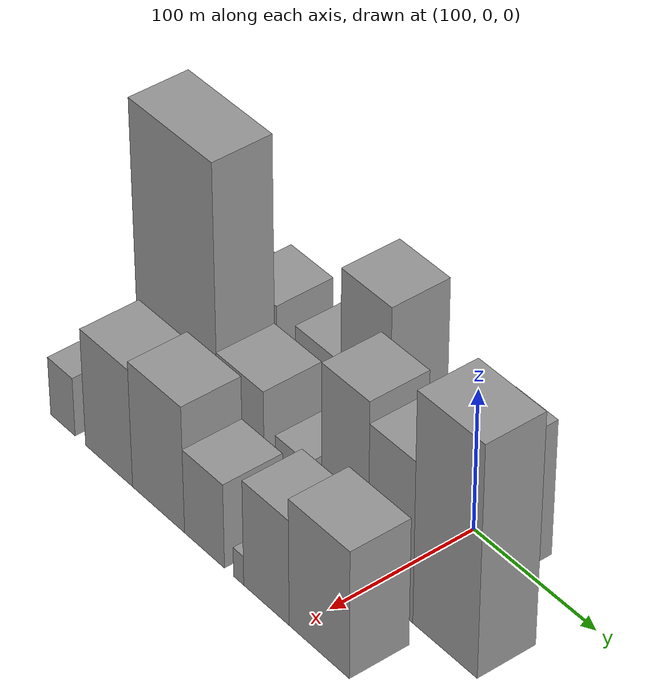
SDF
<sdf version="1.6">
 <world name="default">
  <model name="building_7">
   <static>1</static>
   <pose>100.0000 -209.6957 0 0.000000 0.000000 0.000000</pose>
   <link name="link">
    <pose>0 0 28.50 0 0 0</pose>
    <collision name="collision"><geometry><box><size>40.0000 33.5742 57.0000</size></box></geometry></collision>
    <visual name="visual">
     <cast_shadows>0</cast_shadows>
     <geometry><box><size>40.0000 33.5742 57.0000</size></box></geometry>
     <material>
      <script>
       <uri>model://grey_wall/materials/scripts</uri>
       <uri>model://grey_wall/materials/textures</uri>
       <name>vrc/grey_wall</name>
      </script>
     </material>
    </visual>
   </link>
  </model>
  <model name="building_8">
   <static>1</static>
   <pose>100.0000 -166.0464 0 0.000000 0.000000 0.000000</pose>
   <link name="link">
    <pose>0 0 36.00 0 0 0</pose>
    <collision name="collision"><geometry><box><size>40.0000 37.7243 72.0000</size></box></geometry></collision>
    <visual name="visual">
     <cast_shadows>0</cast_shadows>
     <geometry><box><size>40.0000 37.7243 72.0000</size></box></geometry>
     <material>
      <script>
       <uri>model://grey_wall/materials/scripts</uri>
       <uri>model://grey_wall/materials/textures</uri>
       <name>vrc/grey_wall</name>
      </script>
     </material>
    </visual>
   </link>
  </model>
  <model name="building_9">
   <static>1</static>
   <pose>100.0000 -141.8162 0 0.000000 0.000000 0.000000</pose>
   <link name="link">
    <pose>0 0 12.00 0 0 0</pose>
    <collision name="collision"><geometry><box><size>40.0000 10.7360 24.0000</size></box></geometry></collision>
    <visual name="visual">
     <cast_shadows>0</cast_shadows>
     <geometry><box><size>40.0000 10.7360 24.0000</size></box></geometry>
     <material>
      <script>
       <uri>model://grey_wall/materials/scripts</uri>
       <uri>model://grey_wall/materials/textures</uri>
       <name>vrc/grey_wall</name>
      </script>
     </material>
    </visual>
   </link>
  </model>
  <model name="building_10">
   <static>1</static>
   <pose>100.0000 -110.3357 0 0.000000 0.000000 0.000000</pose>
   <link name="link">
    <pose>0 0 34.50 0 0 0</pose>
    <collision name="collision"><geometry><box><size>40.0000 40.2250 69.0000</size></box></geometry></collision>
    <visual name="visual">
     <cast_shadows>0</cast_shadows>
     <geometry><box><size>40.0000 40.2250 69.0000</size></box></geometry>
     <material>
      <script>
       <uri>model://grey_wall/materials/scripts</uri>
       <uri>model://grey_wall/materials/textures</uri>
       <name>vrc/grey_wall</name>
      </script>
     </material>
    </visual>
   </link>
  </model>
  <model name="building_11">
   <static>1</static>
   <pose>100.0000 -69.0624 0 0.000000 0.000000 0.000000</pose>
   <link name="link">
    <pose>0 0 67.50 0 0 0</pose>
    <collision name="collision"><geometry><box><size>40.0000 42.3215 135.0000</size></box></geometry></collision>
    <visual name="visual">
     <cast_shadows>0</cast_shadows>
     <geometry><box><size>40.0000 42.3215 135.0000</size></box></geometry>
     <material>
      <script>
       <uri>model://grey_wall/materials/scripts</uri>
       <uri>model://grey_wall/materials/textures</uri>
       <name>vrc/grey_wall</name>
      </script>
     </material>
    </visual>
   </link>
  </model>
  <model name="building_12">
   <static>1</static>
   <pose>100.0000 -36.2904 0 0.000000 0.000000 0.000000</pose>
   <link name="link">
    <pose>0 0 19.50 0 0 0</pose>
    <collision name="collision"><geometry><box><size>40.0000 23.2225 39.0000</size></box></geometry></collision>
    <visual name="visual">
     <cast_shadows>0</cast_shadows>
     <geometry><box><size>40.0000 23.2225 39.0000</size></box></geometry>
     <material>
      <script>
       <uri>model://grey_wall/materials/scripts</uri>
       <uri>model://grey_wall/materials/textures</uri>
       <name>vrc/grey_wall</name>
      </script>
     </material>
    </visual>
   </link>
  </model>
  <model name="building_13">
   <static>1</static>
   <pose>100.0000 -11.0439 0 0.000000 0.000000 0.000000</pose>
   <link name="link">
    <pose>0 0 15.00 0 0 0</pose>
    <collision name="collision"><geometry><box><size>40.0000 15.2705 30.0000</size></box></geometry></collision>
    <visual name="visual">
     <cast_shadows>0</cast_shadows>
     <geometry><box><size>40.0000 15.2705 30.0000</size></box></geometry>
     <material>
      <script>
       <uri>model://grey_wall/materials/scripts</uri>
       <uri>model://grey_wall/materials/textures</uri>
       <name>vrc/grey_wall</name>
      </script>
     </material>
    </visual>
   </link>
  </model>
  <model name="building_14">
   <static>1</static>
   <pose>100.0000 23.7268 0 0.000000 0.000000 0.000000</pose>
   <link name="link">
    <pose>0 0 48.00 0 0 0</pose>
    <collision name="collision"><geometry><box><size>40.0000 34.2709 96.0000</size></box></geometry></collision>
    <visual name="visual">
     <cast_shadows>0</cast_shadows>
     <geometry><box><size>40.0000 34.2709 96.0000</size></box></geometry>
     <material>
      <script>
       <uri>model://grey_wall/materials/scripts</uri>
       <uri>model://grey_wall/materials/textures</uri>
       <name>vrc/grey_wall</name>
      </script>
     </material>
    </visual>
   </link>
  </model>
  <model name="building_39">
   <static>1</static>
   <pose>152.0000 -170.0269 0 0.000000 0.000000 0.000000</pose>
   <link name="link">
    <pose>0 0 102.00 0 0 0</pose>
    <collision name="collision"><geometry><box><size>40.0000 73.0582 204.0000</size></box></geometry></collision>
    <visual name="visual">
     <cast_shadows>0</cast_shadows>
     <geometry><box><size>40.0000 73.0582 204.0000</size></box></geometry>
     <material>
      <script>
       <uri>model://grey_wall/materials/scripts</uri>
       <uri>model://grey_wall/materials/textures</uri>
       <name>vrc/grey_wall</name>
      </script>
     </material>
    </visual>
   </link>
  </model>
  <model name="building_40">
   <static>1</static>
   <pose>152.0000 -112.7403 0 0.000000 0.000000 0.000000</pose>
   <link name="link">
    <pose>0 0 37.50 0 0 0</pose>
    <collision name="collision"><geometry><box><size>40.0000 41.5151 75.0000</size></box></geometry></collision>
    <visual name="visual">
     <cast_shadows>0</cast_shadows>
     <geometry><box><size>40.0000 41.5151 75.0000</size></box></geometry>
     <material>
      <script>
       <uri>model://grey_wall/materials/scripts</uri>
       <uri>model://grey_wall/materials/textures</uri>
       <name>vrc/grey_wall</name>
      </script>
     </material>
    </visual>
   </link>
  </model>
  <model name="building_41">
   <static>1</static>
   <pose>152.0000 -67.6886 0 0.000000 0.000000 0.000000</pose>
   <link name="link">
    <pose>0 0 25.50 0 0 0</pose>
    <collision name="collision"><geometry><box><size>40.0000 28.5882 51.0000</size></box></geometry></collision>
    <visual name="visual">
     <cast_shadows>0</cast_shadows>
     <geometry><box><size>40.0000 28.5882 51.0000</size></box></geometry>
     <material>
      <script>
       <uri>model://grey_wall/materials/scripts</uri>
       <uri>model://grey_wall/materials/textures</uri>
       <name>vrc/grey_wall</name>
      </script>
     </material>
    </visual>
   </link>
  </model>
  <model name="building_42">
   <static>1</static>
   <pose>152.0000 -47.5495 0 0.000000 0.000000 0.000000</pose>
   <link name="link">
    <pose>0 0 13.50 0 0 0</pose>
    <collision name="collision"><geometry><box><size>40.0000 11.6902 27.0000</size></box></geometry></collision>
    <visual name="visual">
     <cast_shadows>0</cast_shadows>
     <geometry><box><size>40.0000 11.6902 27.0000</size></box></geometry>
     <material>
      <script>
       <uri>model://grey_wall/materials/scripts</uri>
       <uri>model://grey_wall/materials/textures</uri>
       <name>vrc/grey_wall</name>
      </script>
     </material>
    </visual>
   </link>
  </model>
  <model name="building_43">
   <static>1</static>
   <pose>152.0000 -21.8932 0 0.000000 0.000000 0.000000</pose>
   <link name="link">
    <pose>0 0 64.50 0 0 0</pose>
    <collision name="collision"><geometry><box><size>40.0000 39.6225 129.0000</size></box></geometry></collision>
    <visual name="visual">
     <cast_shadows>0</cast_shadows>
     <geometry><box><size>40.0000 39.6225 129.0000</size></box></geometry>
     <material>
      <script>
       <uri>model://grey_wall/materials/scripts</uri>
       <uri>model://grey_wall/materials/textures</uri>
       <name>vrc/grey_wall</name>
      </script>
     </material>
    </visual>
   </link>
  </model>
  <model name="building_44">
   <static>1</static>
   <pose>152.0000 16.5886 0 0.000000 0.000000 0.000000</pose>
   <link name="link">
    <pose>0 0 57.00 0 0 0</pose>
    <collision name="collision"><geometry><box><size>40.0000 37.3410 114.0000</size></box></geometry></collision>
    <visual name="visual">
     <cast_shadows>0</cast_shadows>
     <geometry><box><size>40.0000 37.3410 114.0000</size></box></geometry>
     <material>
      <script>
       <uri>model://grey_wall/materials/scripts</uri>
       <uri>model://grey_wall/materials/textures</uri>
       <name>vrc/grey_wall</name>
      </script>
     </material>
    </visual>
   </link>
  </model>
  <model name="building_45">
   <static>1</static>
   <pose>152.0000 61.5552 0 0.000000 0.000000 0.000000</pose>
   <link name="link">
    <pose>0 0 81.00 0 0 0</pose>
    <collision name="collision"><geometry><box><size>40.0000 52.5924 162.0000</size></box></geometry></collision>
    <visual name="visual">
     <cast_shadows>0</cast_shadows>
     <geometry><box><size>40.0000 52.5924 162.0000</size></box></geometry>
     <material>
      <script>
       <uri>model://grey_wall/materials/scripts</uri>
       <uri>model://grey_wall/materials/textures</uri>
       <name>vrc/grey_wall</name>
      </script>
     </material>
    </visual>
   </link>
  </model>
  <model name="building_66">
   <static>1</static>
   <pose>204.0000 -208.4638 0 0.000000 0.000000 0.000000</pose>
   <link name="link">
    <pose>0 0 21.00 0 0 0</pose>
    <collision name="collision"><geometry><box><size>40.0000 23.3202 42.0000</size></box></geometry></collision>
    <visual name="visual">
     <cast_shadows>0</cast_shadows>
     <geometry><box><size>40.0000 23.3202 42.0000</size></box></geometry>
     <material>
      <script>
       <uri>model://grey_wall/materials/scripts</uri>
       <uri>model://grey_wall/materials/textures</uri>
       <name>vrc/grey_wall</name>
      </script>
     </material>
    </visual>
   </link>
  </model>
  <model name="building_67">
   <static>1</static>
   <pose>204.0000 -164.8401 0 0.000000 0.000000 0.000000</pose>
   <link name="link">
    <pose>0 0 42.00 0 0 0</pose>
    <collision name="collision"><geometry><box><size>40.0000 43.9272 84.0000</size></box></geometry></collision>
    <visual name="visual">
     <cast_shadows>0</cast_shadows>
     <geometry><box><size>40.0000 43.9272 84.0000</size></box></geometry>
     <material>
      <script>
       <uri>model://grey_wall/materials/scripts</uri>
       <uri>model://grey_wall/materials/textures</uri>
       <name>vrc/grey_wall</name>
      </script>
     </material>
    </visual>
   </link>
  </model>
  <model name="building_68">
   <static>1</static>
   <pose>204.0000 -119.2005 0 0.000000 0.000000 0.000000</pose>
   <link name="link">
    <pose>0 0 45.00 0 0 0</pose>
    <collision name="collision"><geometry><box><size>40.0000 47.3522 90.0000</size></box></geometry></collision>
    <visual name="visual">
     <cast_shadows>0</cast_shadows>
     <geometry><box><size>40.0000 47.3522 90.0000</size></box></geometry>
     <material>
      <script>
       <uri>model://grey_wall/materials/scripts</uri>
       <uri>model://grey_wall/materials/textures</uri>
       <name>vrc/grey_wall</name>
      </script>
     </material>
    </visual>
   </link>
  </model>
  <model name="building_69">
   <static>1</static>
   <pose>204.0000 -77.7665 0 0.000000 0.000000 0.000000</pose>
   <link name="link">
    <pose>0 0 30.00 0 0 0</pose>
    <collision name="collision"><geometry><box><size>40.0000 35.5157 60.0000</size></box></geometry></collision>
    <visual name="visual">
     <cast_shadows>0</cast_shadows>
     <geometry><box><size>40.0000 35.5157 60.0000</size></box></geometry>
     <material>
      <script>
       <uri>model://grey_wall/materials/scripts</uri>
       <uri>model://grey_wall/materials/textures</uri>
       <name>vrc/grey_wall</name>
      </script>
     </material>
    </visual>
   </link>
  </model>
  <model name="building_70">
   <static>1</static>
   <pose>204.0000 -47.5701 0 0.000000 0.000000 0.000000</pose>
   <link name="link">
    <pose>0 0 10.50 0 0 0</pose>
    <collision name="collision"><geometry><box><size>40.0000 8.8772 21.0000</size></box></geometry></collision>
    <visual name="visual">
     <cast_shadows>0</cast_shadows>
     <geometry><box><size>40.0000 8.8772 21.0000</size></box></geometry>
     <material>
      <script>
       <uri>model://grey_wall/materials/scripts</uri>
       <uri>model://grey_wall/materials/textures</uri>
       <name>vrc/grey_wall</name>
      </script>
     </material>
    </visual>
   </link>
  </model>
  <model name="building_71">
   <static>1</static>
   <pose>204.0000 -23.5386 0 0.000000 0.000000 0.000000</pose>
   <link name="link">
    <pose>0 0 37.50 0 0 0</pose>
    <collision name="collision"><geometry><box><size>40.0000 39.1857 75.0000</size></box></geometry></collision>
    <visual name="visual">
     <cast_shadows>0</cast_shadows>
     <geometry><box><size>40.0000 39.1857 75.0000</size></box></geometry>
     <material>
      <script>
       <uri>model://grey_wall/materials/scripts</uri>
       <uri>model://grey_wall/materials/textures</uri>
       <name>vrc/grey_wall</name>
      </script>
     </material>
    </visual>
   </link>
  </model>
  <model name="building_72">
   <static>1</static>
   <pose>204.0000 21.3669 0 0.000000 0.000000 0.000000</pose>
   <link name="link">
    <pose>0 0 45.00 0 0 0</pose>
    <collision name="collision"><geometry><box><size>40.0000 50.6254 90.0000</size></box></geometry></collision>
    <visual name="visual">
     <cast_shadows>0</cast_shadows>
     <geometry><box><size>40.0000 50.6254 90.0000</size></box></geometry>
     <material>
      <script>
       <uri>model://grey_wall/materials/scripts</uri>
       <uri>model://grey_wall/materials/textures</uri>
       <name>vrc/grey_wall</name>
      </script>
     </material>
    </visual>
   </link>
  </model>
 </world>
</sdf>
